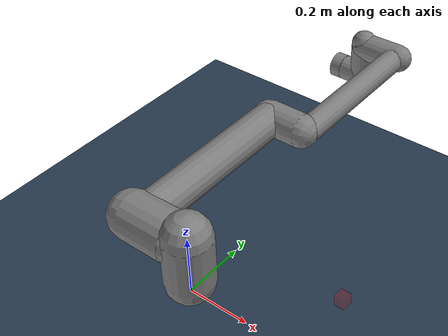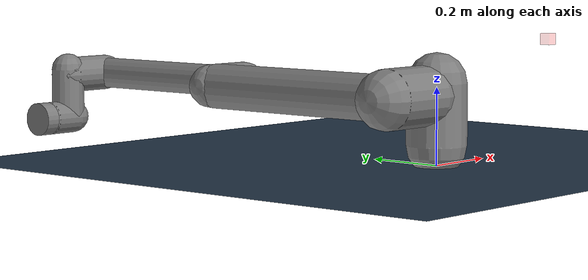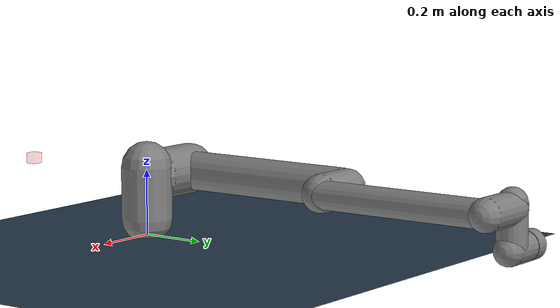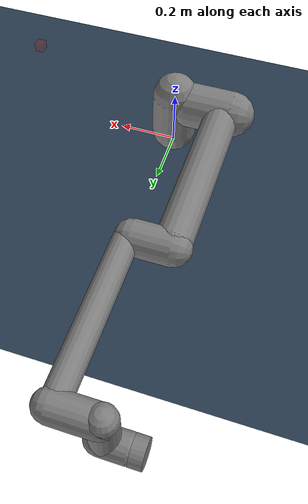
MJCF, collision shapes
<mujoco model="ur10e scene">
  <include file="ur10e.xml"/>

  <statistic center="0.3 0 0.3" extent="0.8" meansize="0.08"/>

  <visual>
    <headlight diffuse="0.6 0.6 0.6" ambient="0.1 0.1 0.1" specular="0 0 0"/>
    <global azimuth="120" elevation="-20"/>
  </visual>

  <asset>
    <texture name="grid" type="2d" builtin="checker" rgb1=".2 .3 .4" rgb2=".1 0.15 0.2" width="512" height="512"
      mark="cross" markrgb=".8 .8 .8"/>
    <material name="grid" texture="grid" texrepeat="1 1" texuniform="true"/>
  </asset>

  <worldbody>
    <light pos="0 0 1.5" directional="true"/>
    <geom name="floor" size="1 1 0.01" type="plane" material="grid"/>
    <body name="target" pos="0.5 0 .3" quat="1 0 0 0" mocap="true">
      <geom type="box" size=".015 .015 .015" contype="0" conaffinity="0" rgba="1 0 0 0.2"/>
    </body>
  </worldbody>
</mujoco>

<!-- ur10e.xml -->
<mujoco model="ur10e">
  <compiler angle="radian" meshdir="assets" autolimits="true" />

  <option integrator="implicitfast" />

  <default>
    <default class="ur10e">
      <material specular="0.5" shininess="0.25" />
      <default class="visual">
        <geom type="mesh" contype="0" conaffinity="0" group="2" />
      </default>
      <default class="collision">
        <geom type="capsule" group="3" />
        <default class="eef_collision">
          <geom type="cylinder" />
        </default>
      </default>
      <joint axis="0 1 0" range="-6.28319 6.28319" />
      <default class="joint_limited">
        <joint range="-3.1415 3.1415" />
      </default>
      <default class="position">
        <position ctrlrange="-6.2831 6.2831" kp="2000" kv="200" forcerange="-150 150" />
        <default class="position_limited">
          <position ctrlrange="-3.1415 3.1415" />
        </default>
        <default class="position_small">
          <position kp="500" kv="50" forcerange="-28 28" />
        </default>
      </default>
      <site size="0.001" rgba="0.5 0.5 0.5 0.3" group="4" />
    </default>
  </default>

  <asset>
    <material name="black" rgba="0.033 0.033 0.033 1" />
    <material name="jointgray" rgba="0.278 0.278 0.278 1" />
    <material name="linkgray" rgba="0.82 0.82 0.82 1" />
    <material name="urblue" rgba="0.49 0.678 0.8 1" />

    <mesh file="base_0.obj" />
    <mesh file="base_1.obj" />
    <mesh file="shoulder_0.obj" />
    <mesh file="shoulder_1.obj" />
    <mesh file="shoulder_2.obj" />
    <mesh file="upperarm_0.obj" />
    <mesh file="upperarm_1.obj" />
    <mesh file="upperarm_2.obj" />
    <mesh file="upperarm_3.obj" />
    <mesh file="forearm_0.obj" />
    <mesh file="forearm_1.obj" />
    <mesh file="forearm_2.obj" />
    <mesh file="forearm_3.obj" />
    <mesh file="wrist1_0.obj" />
    <mesh file="wrist1_1.obj" />
    <mesh file="wrist1_2.obj" />
    <mesh file="wrist2_0.obj" />
    <mesh file="wrist2_1.obj" />
    <mesh file="wrist2_2.obj" />
    <mesh file="wrist3.obj" />
  </asset>

  <worldbody>
    <body name="base" quat="1 0 0 1" childclass="ur10e">
      <inertial mass="4" pos="0 0 0" diaginertia="0.0061063308908 0.0061063308908 0.01125" />
      <geom mesh="base_0" material="black" class="visual" />
      <geom mesh="base_1" material="linkgray" class="visual" />
      <body name="shoulder_link" pos="0 0 0.181">
        <inertial mass="7.778" pos="0 0 0" diaginertia="0.0314743 0.0314743 0.0218756" />
        <joint name="shoulder_pan" axis="0 0 1" />
        <site name="shoulder_pan" />
        <geom mesh="shoulder_0" material="urblue" class="visual" />
        <geom mesh="shoulder_1" material="black" class="visual" />
        <geom mesh="shoulder_2" material="jointgray" class="visual" />
        <geom class="collision" size="0.078 0.08" pos="0 0 -0.05" />
        <body name="upper_arm_link" pos="0 0.176 0" quat="1 0 1 0">
          <inertial mass="12.93" pos="0 0 0.3065"
            diaginertia="0.423074 0.423074 0.0363656" />
          <joint name="shoulder_lift" />
          <site name="shoulder_lift" />
          <geom mesh="upperarm_0" material="black" class="visual" />
          <geom mesh="upperarm_1" material="jointgray" class="visual" />
          <geom mesh="upperarm_2" material="urblue" class="visual" />
          <geom mesh="upperarm_3" material="linkgray" class="visual" />
          <geom class="collision" pos="0 -0.05 0" quat="1 1 0 0" size="0.078 0.08" />
          <geom class="collision" size="0.06 0.3" pos="0 0 0.3" />
          <body name="forearm_link" pos="0 -0.137 0.613">
            <inertial mass="3.87" pos="0 0 0.2855"
              diaginertia="0.11059 0.11059 0.0108844" />
            <joint name="elbow" class="joint_limited" />
            <site name="elbow" />
            <geom mesh="forearm_0" material="urblue" class="visual" />
            <geom mesh="forearm_1" material="black" class="visual" />
            <geom mesh="forearm_2" material="jointgray" class="visual" />
            <geom mesh="forearm_3" material="linkgray" class="visual" />
            <geom class="collision" pos="0 0.08 0" quat="1 1 0 0" size="0.058 0.065" />
            <geom class="collision" size="0.043 0.28" pos="0 0 0.29" />
            <body name="wrist_1_link" pos="0 0 0.571" quat="1 0 1 0">
              <inertial mass="1.96" pos="0 0.135 0"
                diaginertia="0.0055125 0.00510825 0.00510825" />
              <joint name="wrist_1" />
              <site name="wrist_1" />
              <geom mesh="wrist1_0" material="black" class="visual" />
              <geom mesh="wrist1_1" material="urblue" class="visual" />
              <geom mesh="wrist1_2" material="jointgray" class="visual" />
              <geom class="collision" pos="0 0.06 0" quat="1 1 0 0" size="0.05 0.07" />
              <body name="wrist_2_link" pos="0 0.135 0">
                <inertial mass="1.96" pos="0 0 0.12"
                  diaginertia="0.0055125 0.00510825 0.00510825" />
                <joint name="wrist_2" axis="0 0 1" />
                <site name="wrist_2" />
                <geom mesh="wrist2_0" material="black" class="visual" />
                <geom mesh="wrist2_1" material="urblue" class="visual" />
                <geom mesh="wrist2_2" material="jointgray" class="visual" />
                <geom class="collision" size="0.046 0.065" pos="0 0 0.05" />
                <geom class="collision" pos="0 0.028 0.12" quat="1 1 0 0"
                  size="0.046 0.043" />
                <body name="wrist_3_link" pos="0 0 0.12">
                  <inertial mass="0.202" pos="0 0.092 0" quat="0 1 -1 0"
                    diaginertia="0.000204525 0.000144346 0.000144346" />
                  <joint name="wrist_3" />
                  <geom material="linkgray" mesh="wrist3" class="visual" />
                  <geom class="eef_collision" pos="0 0.097 0" quat="1 1 0 0"
                    size="0.046 0.02" />
                  <body name="tool_flange" pos="0 0.11 0" quat="1 1 -1 1">
                    <site name="attachment_site" size="0.01"/>
                  </body>
                </body>
              </body>
            </body>
          </body>
        </body>
      </body>
    </body>
  </worldbody>

  <actuator>
    <motor name="shoulder_pan" joint="shoulder_pan" gear="1" ctrlrange="-150 150"/>
    <motor name="shoulder_lift" joint="shoulder_lift" gear="1" ctrlrange="-150 150"/>
    <motor name="elbow" joint="elbow" gear="1" ctrlrange="-150 150"/>
    <motor name="wrist_1" joint="wrist_1" gear="1" ctrlrange="-28 28"/>
    <motor name="wrist_2" joint="wrist_2" gear="1" ctrlrange="-28 28"/>
    <motor name="wrist_3" joint="wrist_3" gear="1" ctrlrange="-28 28"/>
  </actuator>

  <keyframe>
    <key name="home" qpos="0 -1.5708 1.5708 -1.5708 -1.5708 0"/>
  </keyframe>
</mujoco>
